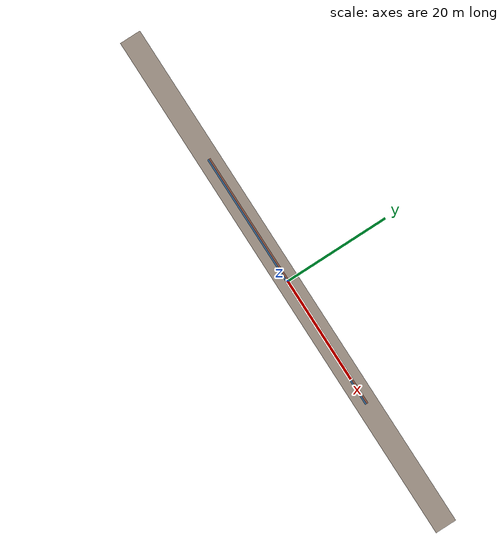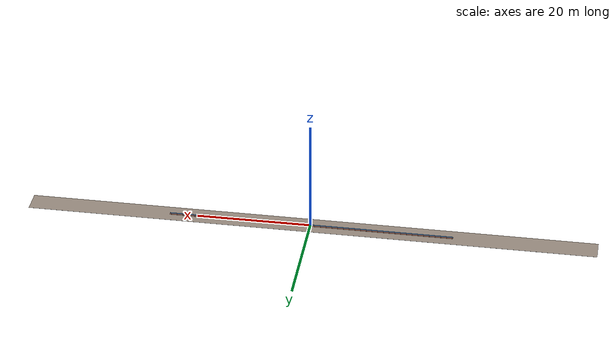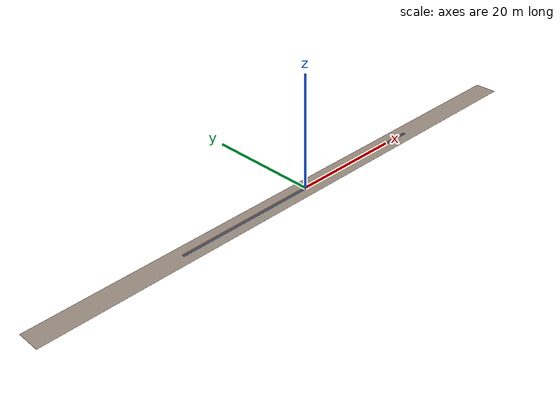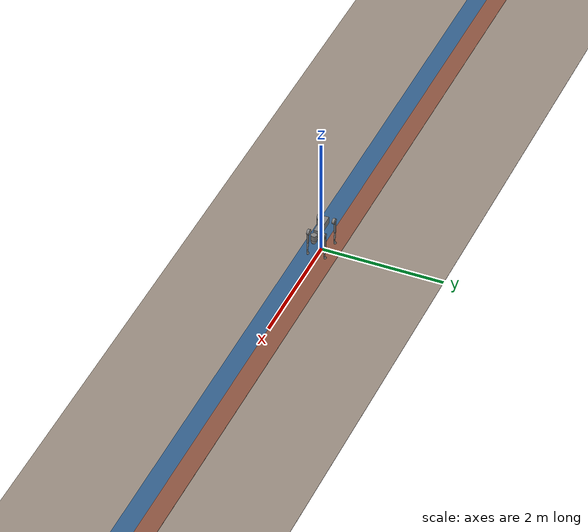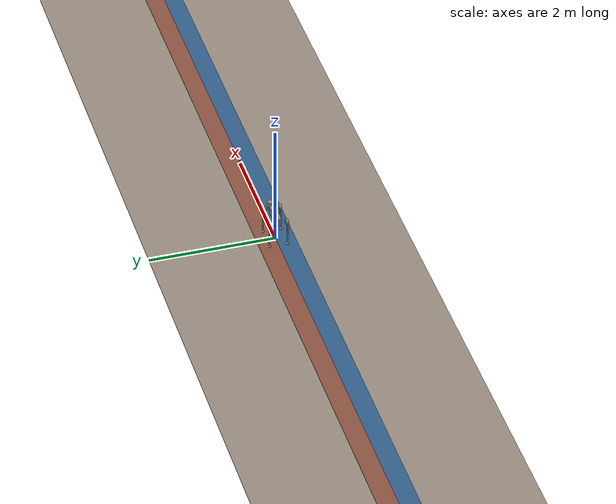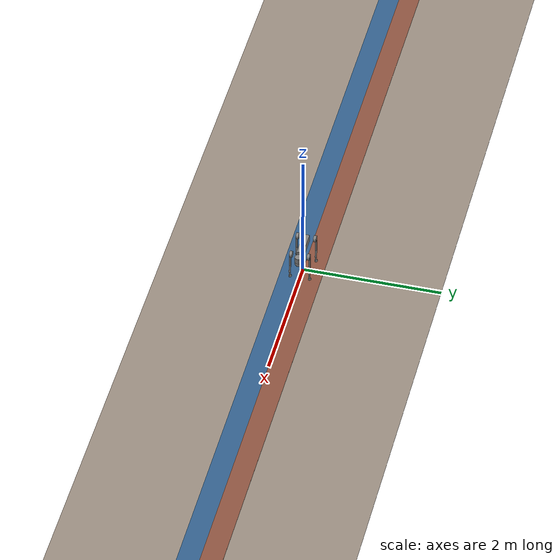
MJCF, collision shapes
<mujoco model="go2_warp_splitbelt_scene">
  <!--
    Go2 on a split-belt treadmill. See spec S§5.2.
    Spawn keyframe places the robot centered between belts, FL+RL on left belt, FR+RR on right.
  -->

  <include file="unitree_go2/go2.xml"/>
  <include file="treadmill_splitbelt.xml"/>

  <worldbody>
    <camera name="splitbelt_side"      pos="0 1.8 0.35" xyaxes="-1 0 0  0 0 1" fovy="45"/>
    <camera name="splitbelt_side_iso"  pos="0.5 1.7 0.55"
            xyaxes="-0.956 0.282 0  -0.083 -0.283 0.955" fovy="45"/>
    <camera name="splitbelt_front"     pos="1.6 0 0.4"  xyaxes="0 -1 0  0 0 1" fovy="50"/>
    <camera name="splitbelt_iso"       pos="1.2 1.2 0.6" xyaxes="-0.7 0.7 0  -0.3 -0.3 0.9" fovy="50"/>
  </worldbody>

  <contact>
    <pair geom1="FL" geom2="left_belt_geom"  margin="0.02"/>
    <pair geom1="FL" geom2="right_belt_geom" margin="0.02"/>
    <pair geom1="FR" geom2="left_belt_geom"  margin="0.02"/>
    <pair geom1="FR" geom2="right_belt_geom" margin="0.02"/>
    <pair geom1="RL" geom2="left_belt_geom"  margin="0.02"/>
    <pair geom1="RL" geom2="right_belt_geom" margin="0.02"/>
    <pair geom1="RR" geom2="left_belt_geom"  margin="0.02"/>
    <pair geom1="RR" geom2="right_belt_geom" margin="0.02"/>
    <pair geom1="FL" geom2="fallback_floor"  margin="0.02"/>
    <pair geom1="FR" geom2="fallback_floor"  margin="0.02"/>
    <pair geom1="RL" geom2="fallback_floor"  margin="0.02"/>
    <pair geom1="RR" geom2="fallback_floor"  margin="0.02"/>
    <!-- base/torso × belts (catches collapse onto a belt; primary fall detector) -->
    <pair geom1="torso_box" geom2="left_belt_geom"/>
    <pair geom1="torso_box" geom2="right_belt_geom"/>
    <pair geom1="torso_box" geom2="fallback_floor"/>
    <pair geom1="torso_cyl" geom2="left_belt_geom"/>
    <pair geom1="torso_cyl" geom2="right_belt_geom"/>
    <pair geom1="torso_cyl" geom2="fallback_floor"/>
    <pair geom1="torso_nose" geom2="left_belt_geom"/>
    <pair geom1="torso_nose" geom2="right_belt_geom"/>
    <pair geom1="torso_nose" geom2="fallback_floor"/>
  </contact>

  <sensor>
    <gyro site="imu" name="gyro"/>
    <accelerometer site="imu" name="accelerometer"/>
    <framelinvel objtype="site" objname="imu" name="global_linvel"/>
    <frameangvel objtype="site" objname="imu" name="global_angvel"/>
    <velocimeter site="imu" name="local_linvel"/>
    <framezaxis objtype="site" objname="imu" name="upvector"/>
    <framexaxis objtype="site" objname="imu" name="forwardvector"/>

    <!-- Per-foot position sensors (relative to IMU) — needed for feet_clearance reward -->
    <framepos objtype="site" objname="FL_foot" name="FL_pos" reftype="site" refname="imu"/>
    <framepos objtype="site" objname="FR_foot" name="FR_pos" reftype="site" refname="imu"/>
    <framepos objtype="site" objname="RL_foot" name="RL_pos" reftype="site" refname="imu"/>
    <framepos objtype="site" objname="RR_foot" name="RR_pos" reftype="site" refname="imu"/>

    <!-- Per-foot linear velocity sensors — needed for feet_slip reward + foot_linvel_sensor_adr -->
    <framelinvel objtype="site" objname="FL_foot" name="FL_global_linvel"/>
    <framelinvel objtype="site" objname="FR_foot" name="FR_global_linvel"/>
    <framelinvel objtype="site" objname="RL_foot" name="RL_global_linvel"/>
    <framelinvel objtype="site" objname="RR_foot" name="RR_global_linvel"/>

    <contact name="FL_floor_found" geom1="FL" geom2="fallback_floor" reduce="mindist" num="1" data="found"/>
    <contact name="FR_floor_found" geom1="FR" geom2="fallback_floor" reduce="mindist" num="1" data="found"/>
    <contact name="RL_floor_found" geom1="RL" geom2="fallback_floor" reduce="mindist" num="1" data="found"/>
    <contact name="RR_floor_found" geom1="RR" geom2="fallback_floor" reduce="mindist" num="1" data="found"/>

    <!-- Boolean contact-pair sensors per bongo lesson 2026-04-02: exact, threshold-free.
         Drives `foot_belt_id` (S§9.1), feet_air_time recompute, and termination (S§7.3). -->
    <contact name="FL_left_belt"  geom1="FL" geom2="left_belt_geom"/>
    <contact name="FL_right_belt" geom1="FL" geom2="right_belt_geom"/>
    <contact name="FR_left_belt"  geom1="FR" geom2="left_belt_geom"/>
    <contact name="FR_right_belt" geom1="FR" geom2="right_belt_geom"/>
    <contact name="RL_left_belt"  geom1="RL" geom2="left_belt_geom"/>
    <contact name="RL_right_belt" geom1="RL" geom2="right_belt_geom"/>
    <contact name="RR_left_belt"  geom1="RR" geom2="left_belt_geom"/>
    <contact name="RR_right_belt" geom1="RR" geom2="right_belt_geom"/>
    <!-- Fall-cause sensors: torso geoms × any belt or floor. -->
    <contact name="torso_left_belt"  geom1="torso_box" geom2="left_belt_geom"/>
    <contact name="torso_right_belt" geom1="torso_box" geom2="right_belt_geom"/>
    <contact name="torso_floor"      geom1="torso_box" geom2="fallback_floor"/>
  </sensor>

  <keyframe>
    <key name="splitbelt_spawn"
         qpos="0 0 0.275  1 0 0 0
               0.0 0.9 -1.8   0.0 0.9 -1.8   0.0 0.9 -1.8   0.0 0.9 -1.8
               0 0"
         ctrl="0 0.9 -1.8 0 0.9 -1.8 0 0.9 -1.8 0 0.9 -1.8 0 0"/>
  </keyframe>
</mujoco>

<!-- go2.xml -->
<mujoco model="go2">
  <compiler angle="radian" meshdir="assets" autolimits="true" />

  <option cone="elliptic" impratio="100" />

  <default>
    <default class="go2">
      <geom friction="0.4" margin="0.001" condim="1"/>
      <joint axis="0 1 0" damping="0.1" armature="0.01" frictionloss="0.2"/>
      <motor ctrlrange="-23.7 23.7"/>
      <default class="abduction">
        <joint axis="1 0 0" range="-1.0472 1.0472"/>
      </default>
      <default class="hip">
        <default class="front_hip">
          <joint range="-1.5708 3.4907"/>
        </default>
        <default class="back_hip">
          <joint range="-0.5236 4.5379"/>
        </default>
      </default>
      <default class="knee">
        <joint range="-2.7227 -0.83776"/>
        <motor ctrlrange="-45.43 45.43"/>
      </default>
      <default class="visual">
        <geom type="mesh" contype="0" conaffinity="0" group="2"/>
      </default>
      <default class="collision">
        <geom group="3"/>
        <default class="foot">
          <geom size="0.022" pos="-0.002 0 -0.213" priority="1" condim="6"
            friction="0.4 0.02 0.01"/>
        </default>
      </default>
    </default>
  </default>

  <asset>
    <material name="metal" rgba=".9 .95 .95 1" />
    <material name="black" rgba="0 0 0 1" />
    <material name="white" rgba="1 1 1 1" />
    <material name="gray" rgba="0.671705 0.692426 0.774270 1" />

    <mesh file="base_0.obj" />
    <mesh file="base_1.obj" />
    <mesh file="base_2.obj" />
    <mesh file="base_3.obj" />
    <mesh file="base_4.obj" />
    <mesh file="hip_0.obj" />
    <mesh file="hip_1.obj" />
    <mesh file="thigh_0.obj" />
    <mesh file="thigh_1.obj" />
    <mesh file="thigh_mirror_0.obj" />
    <mesh file="thigh_mirror_1.obj" />
    <mesh file="calf_0.obj" />
    <mesh file="calf_1.obj" />
    <mesh file="calf_mirror_0.obj" />
    <mesh file="calf_mirror_1.obj" />
    <mesh file="foot.obj" />
  </asset>

  <worldbody>
    <body name="base_link" pos="0 0 0.445" childclass="go2">
      <inertial pos="0.021112 0 -0.005366" quat="-0.000543471 0.713435 -0.00173769 0.700719"
        mass="6.921"
        diaginertia="0.107027 0.0980771 0.0244531" />
      <freejoint />
      <geom mesh="base_0" material="black" class="visual" />
      <geom mesh="base_1" material="black" class="visual" />
      <geom mesh="base_2" material="black" class="visual" />
      <geom mesh="base_3" material="white" class="visual" />
      <geom mesh="base_4" material="gray" class="visual" />
      <geom name="torso_box" size="0.1881 0.04675 0.057" type="box" class="collision" />
      <geom name="torso_cyl" size="0.05 0.045" pos="0.285 0 0.01" type="cylinder" class="collision" />
      <geom name="torso_nose" size="0.047" pos="0.293 0 -0.06" class="collision" />
      <site name="imu" pos="-0.02557 0 0.04232" />
      <body name="FL_hip" pos="0.1934 0.0465 0">
        <inertial pos="-0.0054 0.00194 -0.000105" quat="0.497014 0.499245 0.505462 0.498237"
          mass="0.678"
          diaginertia="0.00088403 0.000596003 0.000479967" />
        <joint name="FL_hip_joint" class="abduction" />
        <geom mesh="hip_0" material="metal" class="visual" />
        <geom mesh="hip_1" material="gray" class="visual" />
        <geom name="FL_hip_col" size="0.046 0.02" pos="0 0.08 0" quat="1 1 0 0" type="cylinder" class="collision" />
        <body name="FL_thigh" pos="0 0.0955 0">
          <inertial pos="-0.00374 -0.0223 -0.0327" quat="0.829533 0.0847635 -0.0200632 0.551623"
            mass="1.152"
            diaginertia="0.00594973 0.00584149 0.000878787" />
          <joint name="FL_thigh_joint" class="front_hip" />
          <geom mesh="thigh_0" material="metal" class="visual" />
          <geom mesh="thigh_1" material="gray" class="visual" />
          <geom name="FL_thigh_col" size="0.1065 0.01225 0.017" pos="0 0 -0.1065" quat="0.707107 0 0.707107 0"
            type="box" class="collision" />
          <body name="FL_calf" pos="0 0 -0.213">
            <inertial pos="0.00629595 -0.000622121 -0.141417"
              quat="0.710672 0.00154099 -0.00450087 0.703508"
              mass="0.241352" diaginertia="0.0014901 0.00146356 5.31397e-05" />
            <joint name="FL_calf_joint" class="knee" />
            <geom mesh="calf_0" material="gray" class="visual" />
            <geom mesh="calf_1" material="black" class="visual" />
            <geom name="FL_calf_upper" size="0.012 0.06" pos="0.008 0 -0.06" quat="0.994493 0 -0.104807 0"
              type="cylinder" class="collision" />
            <geom name="FL_calf_lower" size="0.011 0.0325" pos="0.02 0 -0.148" quat="0.999688 0 0.0249974 0"
              type="cylinder" class="collision" />
            <geom pos="0 0 -0.213" mesh="foot" class="visual" material="black" />
            <geom name="FL" class="foot" />
            <body name="FL_foot" pos="0 0 -0.213" />
            <site name="FL_foot" pos="-0.002 0 -0.213" group="1"/>
          </body>
        </body>
      </body>
      <body name="FR_hip" pos="0.1934 -0.0465 0">
        <inertial pos="-0.0054 -0.00194 -0.000105" quat="0.498237 0.505462 0.499245 0.497014"
          mass="0.678"
          diaginertia="0.00088403 0.000596003 0.000479967" />
        <joint name="FR_hip_joint" class="abduction" />
        <geom mesh="hip_0" material="metal" class="visual" quat="4.63268e-05 1 0 0" />
        <geom mesh="hip_1" material="gray" class="visual" quat="4.63268e-05 1 0 0" />
        <geom name="FR_hip_col" size="0.046 0.02" pos="0 -0.08 0" quat="0.707107 0.707107 0 0" type="cylinder"
          class="collision" />
        <body name="FR_thigh" pos="0 -0.0955 0">
          <inertial pos="-0.00374 0.0223 -0.0327" quat="0.551623 -0.0200632 0.0847635 0.829533"
            mass="1.152"
            diaginertia="0.00594973 0.00584149 0.000878787" />
          <joint name="FR_thigh_joint" class="front_hip" />
          <geom mesh="thigh_mirror_0" material="metal" class="visual" />
          <geom mesh="thigh_mirror_1" material="gray" class="visual" />
          <geom name="FR_thigh_col" size="0.1065 0.01225 0.017" pos="0 0 -0.1065" quat="0.707107 0 0.707107 0"
            type="box" class="collision" />
          <body name="FR_calf" pos="0 0 -0.213">
            <inertial pos="0.00629595 0.000622121 -0.141417"
              quat="0.703508 -0.00450087 0.00154099 0.710672"
              mass="0.241352" diaginertia="0.0014901 0.00146356 5.31397e-05" />
            <joint name="FR_calf_joint" class="knee" />
            <geom mesh="calf_mirror_0" material="gray" class="visual" />
            <geom mesh="calf_mirror_1" material="black" class="visual" />
            <geom name="FR_calf_upper" size="0.013 0.06" pos="0.01 0 -0.06" quat="0.995004 0 -0.0998334 0"
              type="cylinder" class="collision" />
            <geom name="FR_calf_lower" size="0.011 0.0325" pos="0.02 0 -0.148" quat="0.999688 0 0.0249974 0"
              type="cylinder" class="collision" />
            <geom pos="0 0 -0.213" mesh="foot" class="visual" material="black" />
            <geom name="FR" class="foot" />
            <body name="FR_foot" pos="0 0 -0.213" />
            <site name="FR_foot" pos="-0.002 0 -0.213" group="1"/>
          </body>
        </body>
      </body>
      <body name="RL_hip" pos="-0.1934 0.0465 0">
        <inertial pos="0.0054 0.00194 -0.000105" quat="0.505462 0.498237 0.497014 0.499245"
          mass="0.678"
          diaginertia="0.00088403 0.000596003 0.000479967" />
        <joint name="RL_hip_joint" class="abduction" />
        <geom mesh="hip_0" material="metal" class="visual" quat="4.63268e-05 0 1 0" />
        <geom mesh="hip_1" material="gray" class="visual" quat="4.63268e-05 0 1 0" />
        <geom size="0.046 0.02" pos="0 0.08 0" quat="0.707107 0.707107 0 0" type="cylinder"
          class="collision" />
        <body name="RL_thigh" pos="0 0.0955 0">
          <inertial pos="-0.00374 -0.0223 -0.0327" quat="0.829533 0.0847635 -0.0200632 0.551623"
            mass="1.152"
            diaginertia="0.00594973 0.00584149 0.000878787" />
          <joint name="RL_thigh_joint" class="back_hip" />
          <geom mesh="thigh_0" material="metal" class="visual" />
          <geom mesh="thigh_1" material="gray" class="visual" />
          <geom size="0.1065 0.01225 0.017" pos="0 0 -0.1065" quat="0.707107 0 0.707107 0"
            type="box" class="collision" />
          <body name="RL_calf" pos="0 0 -0.213">
            <inertial pos="0.00629595 -0.000622121 -0.141417"
              quat="0.710672 0.00154099 -0.00450087 0.703508"
              mass="0.241352" diaginertia="0.0014901 0.00146356 5.31397e-05" />
            <joint name="RL_calf_joint" class="knee" />
            <geom mesh="calf_0" material="gray" class="visual" />
            <geom mesh="calf_1" material="black" class="visual" />
            <geom size="0.013 0.06" pos="0.01 0 -0.06" quat="0.995004 0 -0.0998334 0"
              type="cylinder" class="collision" />
            <geom size="0.011 0.0325" pos="0.02 0 -0.148" quat="0.999688 0 0.0249974 0"
              type="cylinder" class="collision" />
            <geom pos="0 0 -0.213" mesh="foot" class="visual" material="black" />
            <geom name="RL" class="foot" />
            <body name="RL_foot" pos="0 0 -0.213" />
            <site name="RL_foot" pos="-0.002 0 -0.213" group="1"/>
          </body>
        </body>
      </body>
      <body name="RR_hip" pos="-0.1934 -0.0465 0">
        <inertial pos="0.0054 -0.00194 -0.000105" quat="0.499245 0.497014 0.498237 0.505462"
          mass="0.678"
          diaginertia="0.00088403 0.000596003 0.000479967" />
        <joint name="RR_hip_joint" class="abduction" />
        <geom mesh="hip_0" material="metal" class="visual"
          quat="2.14617e-09 4.63268e-05 4.63268e-05 -1" />
        <geom mesh="hip_1" material="gray" class="visual"
          quat="2.14617e-09 4.63268e-05 4.63268e-05 -1" />
        <geom size="0.046 0.02" pos="0 -0.08 0" quat="0.707107 0.707107 0 0" type="cylinder"
          class="collision" />
        <body name="RR_thigh" pos="0 -0.0955 0">
          <inertial pos="-0.00374 0.0223 -0.0327" quat="0.551623 -0.0200632 0.0847635 0.829533"
            mass="1.152"
            diaginertia="0.00594973 0.00584149 0.000878787" />
          <joint name="RR_thigh_joint" class="back_hip" />
          <geom mesh="thigh_mirror_0" material="metal" class="visual" />
          <geom mesh="thigh_mirror_1" material="gray" class="visual" />
          <geom size="0.1065 0.01225 0.017" pos="0 0 -0.1065" quat="0.707107 0 0.707107 0"
            type="box" class="collision" />
          <body name="RR_calf" pos="0 0 -0.213">
            <inertial pos="0.00629595 0.000622121 -0.141417"
              quat="0.703508 -0.00450087 0.00154099 0.710672"
              mass="0.241352" diaginertia="0.0014901 0.00146356 5.31397e-05" />
            <joint name="RR_calf_joint" class="knee" />
            <geom mesh="calf_mirror_0" material="gray" class="visual" />
            <geom mesh="calf_mirror_1" material="black" class="visual" />
            <geom size="0.013 0.06" pos="0.01 0 -0.06" quat="0.995004 0 -0.0998334 0"
              type="cylinder" class="collision" />
            <geom size="0.011 0.0325" pos="0.02 0 -0.148" quat="0.999688 0 0.0249974 0"
              type="cylinder" class="collision" />
            <geom pos="0 0 -0.213" mesh="foot" class="visual" material="black" />
            <geom name="RR" class="foot" />
            <body name="RR_foot" pos="0 0 -0.213" />
            <site name="RR_foot" pos="-0.002 0 -0.213" group="1"/>
          </body>
        </body>
      </body>
    </body>
  </worldbody>

  <actuator>
    <motor class="abduction" name="FR_hip" joint="FR_hip_joint" />
    <motor class="hip" name="FR_thigh" joint="FR_thigh_joint" />
    <motor class="knee" name="FR_calf" joint="FR_calf_joint" />
    <motor class="abduction" name="FL_hip" joint="FL_hip_joint" />
    <motor class="hip" name="FL_thigh" joint="FL_thigh_joint" />
    <motor class="knee" name="FL_calf" joint="FL_calf_joint" />
    <motor class="abduction" name="RR_hip" joint="RR_hip_joint" />
    <motor class="hip" name="RR_thigh" joint="RR_thigh_joint" />
    <motor class="knee" name="RR_calf" joint="RR_calf_joint" />
    <motor class="abduction" name="RL_hip" joint="RL_hip_joint" />
    <motor class="hip" name="RL_thigh" joint="RL_thigh_joint" />
    <motor class="knee" name="RL_calf" joint="RL_calf_joint" />
  </actuator>

  <sensor>
    <jointpos name="FR_hip_pos" joint="FR_hip_joint" />
    <jointpos name="FR_thigh_pos" joint="FR_thigh_joint" />
    <jointpos name="FR_calf_pos" joint="FR_calf_joint" />
    <jointpos name="FL_hip_pos" joint="FL_hip_joint" />
    <jointpos name="FL_thigh_pos" joint="FL_thigh_joint" />
    <jointpos name="FL_calf_pos" joint="FL_calf_joint" />
    <jointpos name="RR_hip_pos" joint="RR_hip_joint" />
    <jointpos name="RR_thigh_pos" joint="RR_thigh_joint" />
    <jointpos name="RR_calf_pos" joint="RR_calf_joint" />
    <jointpos name="RL_hip_pos" joint="RL_hip_joint" />
    <jointpos name="RL_thigh_pos" joint="RL_thigh_joint" />
    <jointpos name="RL_calf_pos" joint="RL_calf_joint" />

    <jointvel name="FR_hip_vel" joint="FR_hip_joint" />
    <jointvel name="FR_thigh_vel" joint="FR_thigh_joint" />
    <jointvel name="FR_calf_vel" joint="FR_calf_joint" />
    <jointvel name="FL_hip_vel" joint="FL_hip_joint" />
    <jointvel name="FL_thigh_vel" joint="FL_thigh_joint" />
    <jointvel name="FL_calf_vel" joint="FL_calf_joint" />
    <jointvel name="RR_hip_vel" joint="RR_hip_joint" />
    <jointvel name="RR_thigh_vel" joint="RR_thigh_joint" />
    <jointvel name="RR_calf_vel" joint="RR_calf_joint" />
    <jointvel name="RL_hip_vel" joint="RL_hip_joint" />
    <jointvel name="RL_thigh_vel" joint="RL_thigh_joint" />
    <jointvel name="RL_calf_vel" joint="RL_calf_joint" />

    <jointactuatorfrc name="FR_hip_torque" joint="FR_hip_joint" noise="0.01" />
    <jointactuatorfrc name="FR_thigh_torque" joint="FR_thigh_joint" noise="0.01" />
    <jointactuatorfrc name="FR_calf_torque" joint="FR_calf_joint" noise="0.01" />
    <jointactuatorfrc name="FL_hip_torque" joint="FL_hip_joint" noise="0.01" />
    <jointactuatorfrc name="FL_thigh_torque" joint="FL_thigh_joint" noise="0.01" />
    <jointactuatorfrc name="FL_calf_torque" joint="FL_calf_joint" noise="0.01" />
    <jointactuatorfrc name="RR_hip_torque" joint="RR_hip_joint" noise="0.01" />
    <jointactuatorfrc name="RR_thigh_torque" joint="RR_thigh_joint" noise="0.01" />
    <jointactuatorfrc name="RR_calf_torque" joint="RR_calf_joint" noise="0.01" />
    <jointactuatorfrc name="RL_hip_torque" joint="RL_hip_joint" noise="0.01" />
    <jointactuatorfrc name="RL_thigh_torque" joint="RL_thigh_joint" noise="0.01" />
    <jointactuatorfrc name="RL_calf_torque" joint="RL_calf_joint" noise="0.01" />

    <framequat name="imu_quat" objtype="site" objname="imu" />
    <gyro name="imu_gyro" site="imu" />
    <accelerometer name="imu_acc" site="imu" />

    <framepos name="frame_pos" objtype="site" objname="imu" />
    <framelinvel name="frame_vel" objtype="site" objname="imu" />
  </sensor>

  <keyframe>
    <key name="home" qpos="0 0 0.27 1 0 0 0 0 0.9 -1.8 0 0.9 -1.8 0 0.9 -1.8 0 0.9 -1.8"
      ctrl="0 0.9 -1.8 0 0.9 -1.8 0 0.9 -1.8 0 0.9 -1.8" />
  </keyframe>
</mujoco>

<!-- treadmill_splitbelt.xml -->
<mujoco model="treadmill_splitbelt">

  <option timestep="0.004"/>

  <asset>
    <!-- Checker textures so belt motion is visible at render time. Different
         hues per side so visual side identification is unambiguous. -->
    <texture name="left_belt_tex"  type="2d" builtin="checker" rgb1="0.25 0.45 0.65" rgb2="0.15 0.30 0.45"
             width="64" height="512"/>
    <texture name="right_belt_tex" type="2d" builtin="checker" rgb1="0.65 0.40 0.30" rgb2="0.45 0.25 0.20"
             width="64" height="512"/>
    <material name="left_belt_mat"  texture="left_belt_tex"  texrepeat="50 2" specular="0.1" shininess="0.1"/>
    <material name="right_belt_mat" texture="right_belt_tex" texrepeat="50 2" specular="0.1" shininess="0.1"/>
  </asset>

  <default>
    <default class="treadmill_belt">
      <geom type="box" friction="1.0 0.005 0.0001"/>
      <joint type="slide" axis="1 0 0" damping="0" frictionloss="0"/>
    </default>
  </default>

  <worldbody>
    <light name="overhead"   directional="true" pos="0 0 5.0"  dir="0 0 -1"     diffuse="0.7 0.7 0.7" specular="0.2 0.2 0.2"/>
    <light name="fill_front" directional="true" pos="2 0 2.0"  dir="-1 0 -0.5"  diffuse="0.3 0.3 0.3"/>
    <light name="fill_side"  directional="true" pos="0 2 2.0"  dir="0 -1 -0.5" diffuse="0.3 0.3 0.3"/>
    <geom name="fallback_floor"
          type="box"
          size="50 2.0 0.005"
          pos="0 0 -0.010"
          rgba="0.6 0.55 0.5 1"
          friction="1.0 0.005 0.0001"/>

    <!-- Left belt: y in [-0.300, 0.000], slides along world x. -->
    <body name="left_belt" pos="0 -0.150 0">
      <joint name="left_belt_joint" class="treadmill_belt"/>
      <geom name="left_belt_geom" class="treadmill_belt" size="25 0.15 0.005" material="left_belt_mat"/>
    </body>

    <!-- Right belt: y in [0.000, 0.300]. Edges meet left belt at y=0. -->
    <body name="right_belt" pos="0 0.150 0">
      <joint name="right_belt_joint" class="treadmill_belt"/>
      <geom name="right_belt_geom" class="treadmill_belt" size="25 0.15 0.005" material="right_belt_mat"/>
    </body>
  </worldbody>

  <actuator>
    <velocity name="left_belt_vel"  joint="left_belt_joint"  kv="200" ctrlrange="-3.0 3.0" forcerange="-200 200"/>
    <velocity name="right_belt_vel" joint="right_belt_joint" kv="200" ctrlrange="-3.0 3.0" forcerange="-200 200"/>
  </actuator>
</mujoco>
